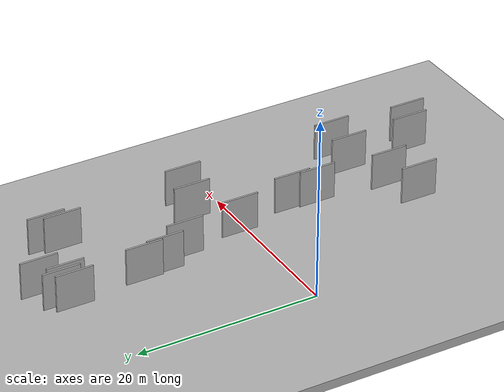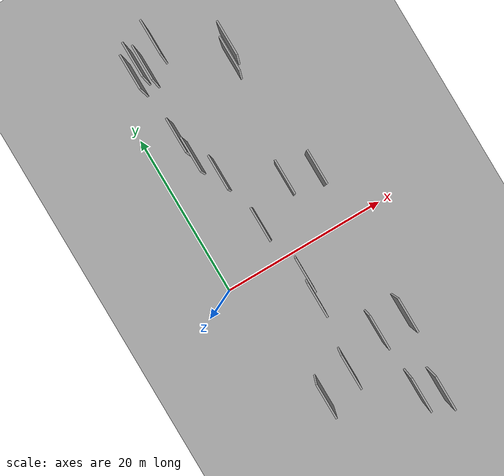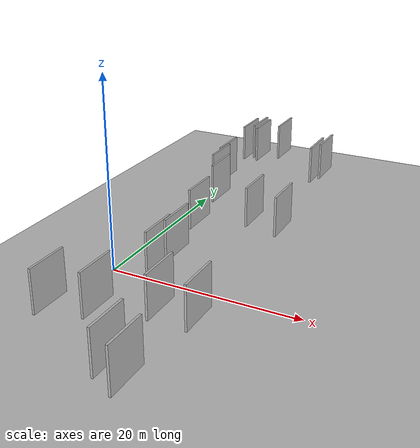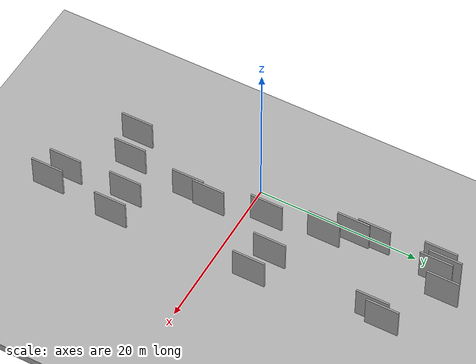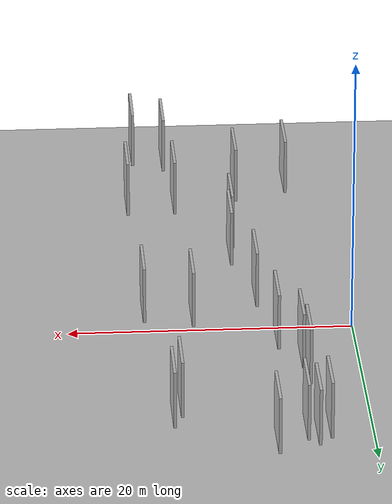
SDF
<?xml version="1.0" encoding="utf-8"?>

<sdf version="1.6">

   <world name="default">

      <gui fullscreen="0">

         <camera name="user_camera">

            <pose>-15 0 4.57585 0 0 0</pose>

            <view_controller>orbit</view_controller>

         </camera>

      </gui>

      <scene>

         <sky>

           <clouds>

             <speed>12</speed>

           </clouds>

         </sky>

         <ambient>0.4 0.4 0.4 1</ambient>

         <background>0.7 0.7 0.7 1</background>

         <shadows>1</shadows>

      </scene>

      <gravity>0 0 -9.8066</gravity>

      <magnetic_field>6e-06 2.3e-05 -4.2e-05</magnetic_field>

      <physics default="0" name="default_physics" type="ode">

         <ode>

            <solver>

               <type>quick</type>

               <iters>10</iters>

               <sor>1.0</sor>

               <use_dynamic_moi_rescaling>0</use_dynamic_moi_rescaling>

            </solver>

            <constraints>

               <cfm>0</cfm>

               <erp>0.2</erp>

               <contact_max_correcting_vel>100</contact_max_correcting_vel>

               <contact_surface_layer>0.001</contact_surface_layer>

            </constraints>

         </ode>

         <max_step_size>0.004</max_step_size>

         <real_time_factor>1</real_time_factor>

         <real_time_update_rate>250</real_time_update_rate>

      </physics>

      <light name="sun" type="directional">

         <cast_shadows>1</cast_shadows>

         <pose>0 0 10 0 0 0</pose>

         <diffuse>0.8 0.8 0.8 1</diffuse>

         <specular>0.2 0.2 0.2 1</specular>

         <attenuation>

            <range>1000</range>

            <constant>0.9</constant>

            <linear>0.01</linear>

            <quadratic>0.001</quadratic>

         </attenuation>

         <direction>-0.5 0.1 -0.9</direction>

      </light>

      <include>

         <name>ground_plane_1</name>

         <uri>model://HANNAS_ground_plane</uri>

         <pose>0 0 0  0 0 0</pose>

      </include>

      <include>

         <name>ground_plane_2</name>

         <uri>model://HANNAS_ground_plane</uri>

         <pose>100 0 0  0 0 0</pose>

      </include>

      <model name="HANNAS_wall_1">

         <static>1</static>

         <pose frame="">13.9097 22.5149 5.0 0.000000 0.000000 1.570796</pose>

         <link name="link">

            <pose frame="">0 0 2.00 0 0 0</pose>

            <collision name="collision">

               <geometry>

                  <box>

                     <size>4.00 0.2 4.00</size>

                  </box>

               </geometry>

               <max_contacts>10</max_contacts>

               <surface>

                  <contact>

                     <ode/>

                  </contact>

                  <bounce/>

                  <friction>

                     <torsional>

                        <ode/>

                     </torsional>

                     <ode/>

                  </friction>

               </surface>

            </collision>

            <visual name="visual">

               <cast_shadows>0</cast_shadows>

               <geometry>

                  <box>

                     <size>4.00 0.2 4.00</size>

                  </box>

               </geometry>

               <material>

                  <script>

                     <uri>model://HANNAS_wall/materials/scripts</uri>

                     <uri>model://HANNAS_wall/materials/textures</uri>

                     <name>vrc/HANNAS_wall</name>

                  </script>

               </material>

            </visual>

            <self_collide>0</self_collide>

            <enable_wind>0</enable_wind>

            <kinematic>0</kinematic>

         </link>

      </model>

      <model name="HANNAS_wall_2">

         <static>1</static>

         <pose frame="">12.3704 -18.4030 5.0 0.000000 0.000000 1.570796</pose>

         <link name="link">

            <pose frame="">0 0 2.00 0 0 0</pose>

            <collision name="collision">

               <geometry>

                  <box>

                     <size>4.00 0.2 4.00</size>

                  </box>

               </geometry>

               <max_contacts>10</max_contacts>

               <surface>

                  <contact>

                     <ode/>

                  </contact>

                  <bounce/>

                  <friction>

                     <torsional>

                        <ode/>

                     </torsional>

                     <ode/>

                  </friction>

               </surface>

            </collision>

            <visual name="visual">

               <cast_shadows>0</cast_shadows>

               <geometry>

                  <box>

                     <size>4.00 0.2 4.00</size>

                  </box>

               </geometry>

               <material>

                  <script>

                     <uri>model://HANNAS_wall/materials/scripts</uri>

                     <uri>model://HANNAS_wall/materials/textures</uri>

                     <name>vrc/HANNAS_wall</name>

                  </script>

               </material>

            </visual>

            <self_collide>0</self_collide>

            <enable_wind>0</enable_wind>

            <kinematic>0</kinematic>

         </link>

      </model>

      <model name="HANNAS_wall_3">

         <static>1</static>

         <pose frame="">7.4770 -12.8125 5.0 0.000000 0.000000 1.570796</pose>

         <link name="link">

            <pose frame="">0 0 2.00 0 0 0</pose>

            <collision name="collision">

               <geometry>

                  <box>

                     <size>4.00 0.2 4.00</size>

                  </box>

               </geometry>

               <max_contacts>10</max_contacts>

               <surface>

                  <contact>

                     <ode/>

                  </contact>

                  <bounce/>

                  <friction>

                     <torsional>

                        <ode/>

                     </torsional>

                     <ode/>

                  </friction>

               </surface>

            </collision>

            <visual name="visual">

               <cast_shadows>0</cast_shadows>

               <geometry>

                  <box>

                     <size>4.00 0.2 4.00</size>

                  </box>

               </geometry>

               <material>

                  <script>

                     <uri>model://HANNAS_wall/materials/scripts</uri>

                     <uri>model://HANNAS_wall/materials/textures</uri>

                     <name>vrc/HANNAS_wall</name>

                  </script>

               </material>

            </visual>

            <self_collide>0</self_collide>

            <enable_wind>0</enable_wind>

            <kinematic>0</kinematic>

         </link>

      </model>

      <model name="HANNAS_wall_4">

         <static>1</static>

         <pose frame="">6.2312 11.3395 5.0 0.000000 0.000000 1.570796</pose>

         <link name="link">

            <pose frame="">0 0 2.00 0 0 0</pose>

            <collision name="collision">

               <geometry>

                  <box>

                     <size>4.00 0.2 4.00</size>

                  </box>

               </geometry>

               <max_contacts>10</max_contacts>

               <surface>

                  <contact>

                     <ode/>

                  </contact>

                  <bounce/>

                  <friction>

                     <torsional>

                        <ode/>

                     </torsional>

                     <ode/>

                  </friction>

               </surface>

            </collision>

            <visual name="visual">

               <cast_shadows>0</cast_shadows>

               <geometry>

                  <box>

                     <size>4.00 0.2 4.00</size>

                  </box>

               </geometry>

               <material>

                  <script>

                     <uri>model://HANNAS_wall/materials/scripts</uri>

                     <uri>model://HANNAS_wall/materials/textures</uri>

                     <name>vrc/HANNAS_wall</name>

                  </script>

               </material>

            </visual>

            <self_collide>0</self_collide>

            <enable_wind>0</enable_wind>

            <kinematic>0</kinematic>

         </link>

      </model>

      <model name="HANNAS_wall_5">

         <static>1</static>

         <pose frame="">7.3326 26.5367 5.0 0.000000 0.000000 1.570796</pose>

         <link name="link">

            <pose frame="">0 0 2.00 0 0 0</pose>

            <collision name="collision">

               <geometry>

                  <box>

                     <size>4.00 0.2 4.00</size>

                  </box>

               </geometry>

               <max_contacts>10</max_contacts>

               <surface>

                  <contact>

                     <ode/>

                  </contact>

                  <bounce/>

                  <friction>

                     <torsional>

                        <ode/>

                     </torsional>

                     <ode/>

                  </friction>

               </surface>

            </collision>

            <visual name="visual">

               <cast_shadows>0</cast_shadows>

               <geometry>

                  <box>

                     <size>4.00 0.2 4.00</size>

                  </box>

               </geometry>

               <material>

                  <script>

                     <uri>model://HANNAS_wall/materials/scripts</uri>

                     <uri>model://HANNAS_wall/materials/textures</uri>

                     <name>vrc/HANNAS_wall</name>

                  </script>

               </material>

            </visual>

            <self_collide>0</self_collide>

            <enable_wind>0</enable_wind>

            <kinematic>0</kinematic>

         </link>

      </model>

      <model name="HANNAS_wall_6">

         <static>1</static>

         <pose frame="">15.0741 6.7073 5.0 0.000000 0.000000 1.570796</pose>

         <link name="link">

            <pose frame="">0 0 2.00 0 0 0</pose>

            <collision name="collision">

               <geometry>

                  <box>

                     <size>4.00 0.2 4.00</size>

                  </box>

               </geometry>

               <max_contacts>10</max_contacts>

               <surface>

                  <contact>

                     <ode/>

                  </contact>

                  <bounce/>

                  <friction>

                     <torsional>

                        <ode/>

                     </torsional>

                     <ode/>

                  </friction>

               </surface>

            </collision>

            <visual name="visual">

               <cast_shadows>0</cast_shadows>

               <geometry>

                  <box>

                     <size>4.00 0.2 4.00</size>

                  </box>

               </geometry>

               <material>

                  <script>

                     <uri>model://HANNAS_wall/materials/scripts</uri>

                     <uri>model://HANNAS_wall/materials/textures</uri>

                     <name>vrc/HANNAS_wall</name>

                  </script>

               </material>

            </visual>

            <self_collide>0</self_collide>

            <enable_wind>0</enable_wind>

            <kinematic>0</kinematic>

         </link>

      </model>

      <model name="HANNAS_wall_7">

         <static>1</static>

         <pose frame="">15.3123 -10.8016 5.0 0.000000 0.000000 1.570796</pose>

         <link name="link">

            <pose frame="">0 0 2.00 0 0 0</pose>

            <collision name="collision">

               <geometry>

                  <box>

                     <size>4.00 0.2 4.00</size>

                  </box>

               </geometry>

               <max_contacts>10</max_contacts>

               <surface>

                  <contact>

                     <ode/>

                  </contact>

                  <bounce/>

                  <friction>

                     <torsional>

                        <ode/>

                     </torsional>

                     <ode/>

                  </friction>

               </surface>

            </collision>

            <visual name="visual">

               <cast_shadows>0</cast_shadows>

               <geometry>

                  <box>

                     <size>4.00 0.2 4.00</size>

                  </box>

               </geometry>

               <material>

                  <script>

                     <uri>model://HANNAS_wall/materials/scripts</uri>

                     <uri>model://HANNAS_wall/materials/textures</uri>

                     <name>vrc/HANNAS_wall</name>

                  </script>

               </material>

            </visual>

            <self_collide>0</self_collide>

            <enable_wind>0</enable_wind>

            <kinematic>0</kinematic>

         </link>

      </model>

      <model name="HANNAS_wall_8">

         <static>1</static>

         <pose frame="">11.7667 7.5031 5.0 0.000000 0.000000 1.570796</pose>

         <link name="link">

            <pose frame="">0 0 2.00 0 0 0</pose>

            <collision name="collision">

               <geometry>

                  <box>

                     <size>4.00 0.2 4.00</size>

                  </box>

               </geometry>

               <max_contacts>10</max_contacts>

               <surface>

                  <contact>

                     <ode/>

                  </contact>

                  <bounce/>

                  <friction>

                     <torsional>

                        <ode/>

                     </torsional>

                     <ode/>

                  </friction>

               </surface>

            </collision>

            <visual name="visual">

               <cast_shadows>0</cast_shadows>

               <geometry>

                  <box>

                     <size>4.00 0.2 4.00</size>

                  </box>

               </geometry>

               <material>

                  <script>

                     <uri>model://HANNAS_wall/materials/scripts</uri>

                     <uri>model://HANNAS_wall/materials/textures</uri>

                     <name>vrc/HANNAS_wall</name>

                  </script>

               </material>

            </visual>

            <self_collide>0</self_collide>

            <enable_wind>0</enable_wind>

            <kinematic>0</kinematic>

         </link>

      </model>

      <model name="HANNAS_wall_9">

         <static>1</static>

         <pose frame="">7.2168 4.6454 5.0 0.000000 0.000000 1.570796</pose>

         <link name="link">

            <pose frame="">0 0 2.00 0 0 0</pose>

            <collision name="collision">

               <geometry>

                  <box>

                     <size>4.00 0.2 4.00</size>

                  </box>

               </geometry>

               <max_contacts>10</max_contacts>

               <surface>

                  <contact>

                     <ode/>

                  </contact>

                  <bounce/>

                  <friction>

                     <torsional>

                        <ode/>

                     </torsional>

                     <ode/>

                  </friction>

               </surface>

            </collision>

            <visual name="visual">

               <cast_shadows>0</cast_shadows>

               <geometry>

                  <box>

                     <size>4.00 0.2 4.00</size>

                  </box>

               </geometry>

               <material>

                  <script>

                     <uri>model://HANNAS_wall/materials/scripts</uri>

                     <uri>model://HANNAS_wall/materials/textures</uri>

                     <name>vrc/HANNAS_wall</name>

                  </script>

               </material>

            </visual>

            <self_collide>0</self_collide>

            <enable_wind>0</enable_wind>

            <kinematic>0</kinematic>

         </link>

      </model>

      <model name="HANNAS_wall_10">

         <static>1</static>

         <pose frame="">4.5075 16.7109 5.0 0.000000 0.000000 1.570796</pose>

         <link name="link">

            <pose frame="">0 0 2.00 0 0 0</pose>

            <collision name="collision">

               <geometry>

                  <box>

                     <size>4.00 0.2 4.00</size>

                  </box>

               </geometry>

               <max_contacts>10</max_contacts>

               <surface>

                  <contact>

                     <ode/>

                  </contact>

                  <bounce/>

                  <friction>

                     <torsional>

                        <ode/>

                     </torsional>

                     <ode/>

                  </friction>

               </surface>

            </collision>

            <visual name="visual">

               <cast_shadows>0</cast_shadows>

               <geometry>

                  <box>

                     <size>4.00 0.2 4.00</size>

                  </box>

               </geometry>

               <material>

                  <script>

                     <uri>model://HANNAS_wall/materials/scripts</uri>

                     <uri>model://HANNAS_wall/materials/textures</uri>

                     <name>vrc/HANNAS_wall</name>

                  </script>

               </material>

            </visual>

            <self_collide>0</self_collide>

            <enable_wind>0</enable_wind>

            <kinematic>0</kinematic>

         </link>

      </model>

      <model name="HANNAS_wall_11">

         <static>1</static>

         <pose frame="">3.7710 24.5595 5.0 0.000000 0.000000 1.570796</pose>

         <link name="link">

            <pose frame="">0 0 2.00 0 0 0</pose>

            <collision name="collision">

               <geometry>

                  <box>

                     <size>4.00 0.2 4.00</size>

                  </box>

               </geometry>

               <max_contacts>10</max_contacts>

               <surface>

                  <contact>

                     <ode/>

                  </contact>

                  <bounce/>

                  <friction>

                     <torsional>

                        <ode/>

                     </torsional>

                     <ode/>

                  </friction>

               </surface>

            </collision>

            <visual name="visual">

               <cast_shadows>0</cast_shadows>

               <geometry>

                  <box>

                     <size>4.00 0.2 4.00</size>

                  </box>

               </geometry>

               <material>

                  <script>

                     <uri>model://HANNAS_wall/materials/scripts</uri>

                     <uri>model://HANNAS_wall/materials/textures</uri>

                     <name>vrc/HANNAS_wall</name>

                  </script>

               </material>

            </visual>

            <self_collide>0</self_collide>

            <enable_wind>0</enable_wind>

            <kinematic>0</kinematic>

         </link>

      </model>

      <model name="HANNAS_wall_12">

         <static>1</static>

         <pose frame="">3.8115 -14.0479 5.0 0.000000 0.000000 1.570796</pose>

         <link name="link">

            <pose frame="">0 0 2.00 0 0 0</pose>

            <collision name="collision">

               <geometry>

                  <box>

                     <size>4.00 0.2 4.00</size>

                  </box>

               </geometry>

               <max_contacts>10</max_contacts>

               <surface>

                  <contact>

                     <ode/>

                  </contact>

                  <bounce/>

                  <friction>

                     <torsional>

                        <ode/>

                     </torsional>

                     <ode/>

                  </friction>

               </surface>

            </collision>

            <visual name="visual">

               <cast_shadows>0</cast_shadows>

               <geometry>

                  <box>

                     <size>4.00 0.2 4.00</size>

                  </box>

               </geometry>

               <material>

                  <script>

                     <uri>model://HANNAS_wall/materials/scripts</uri>

                     <uri>model://HANNAS_wall/materials/textures</uri>

                     <name>vrc/HANNAS_wall</name>

                  </script>

               </material>

            </visual>

            <self_collide>0</self_collide>

            <enable_wind>0</enable_wind>

            <kinematic>0</kinematic>

         </link>

      </model>

      <model name="HANNAS_wall_13">

         <static>1</static>

         <pose frame="">8.2517 -4.8424 5.0 0.000000 0.000000 1.570796</pose>

         <link name="link">

            <pose frame="">0 0 2.00 0 0 0</pose>

            <collision name="collision">

               <geometry>

                  <box>

                     <size>4.00 0.2 4.00</size>

                  </box>

               </geometry>

               <max_contacts>10</max_contacts>

               <surface>

                  <contact>

                     <ode/>

                  </contact>

                  <bounce/>

                  <friction>

                     <torsional>

                        <ode/>

                     </torsional>

                     <ode/>

                  </friction>

               </surface>

            </collision>

            <visual name="visual">

               <cast_shadows>0</cast_shadows>

               <geometry>

                  <box>

                     <size>4.00 0.2 4.00</size>

                  </box>

               </geometry>

               <material>

                  <script>

                     <uri>model://HANNAS_wall/materials/scripts</uri>

                     <uri>model://HANNAS_wall/materials/textures</uri>

                     <name>vrc/HANNAS_wall</name>

                  </script>

               </material>

            </visual>

            <self_collide>0</self_collide>

            <enable_wind>0</enable_wind>

            <kinematic>0</kinematic>

         </link>

      </model>

      <model name="HANNAS_wall_14">

         <static>1</static>

         <pose frame="">5.3126 24.7505 5.0 0.000000 0.000000 1.570796</pose>

         <link name="link">

            <pose frame="">0 0 2.00 0 0 0</pose>

            <collision name="collision">

               <geometry>

                  <box>

                     <size>4.00 0.2 4.00</size>

                  </box>

               </geometry>

               <max_contacts>10</max_contacts>

               <surface>

                  <contact>

                     <ode/>

                  </contact>

                  <bounce/>

                  <friction>

                     <torsional>

                        <ode/>

                     </torsional>

                     <ode/>

                  </friction>

               </surface>

            </collision>

            <visual name="visual">

               <cast_shadows>0</cast_shadows>

               <geometry>

                  <box>

                     <size>4.00 0.2 4.00</size>

                  </box>

               </geometry>

               <material>

                  <script>

                     <uri>model://HANNAS_wall/materials/scripts</uri>

                     <uri>model://HANNAS_wall/materials/textures</uri>

                     <name>vrc/HANNAS_wall</name>

                  </script>

               </material>

            </visual>

            <self_collide>0</self_collide>

            <enable_wind>0</enable_wind>

            <kinematic>0</kinematic>

         </link>

      </model>

      <model name="HANNAS_wall_15">

         <static>1</static>

         <pose frame="">4.7926 14.3018 5.0 0.000000 0.000000 1.570796</pose>

         <link name="link">

            <pose frame="">0 0 2.00 0 0 0</pose>

            <collision name="collision">

               <geometry>

                  <box>

                     <size>4.00 0.2 4.00</size>

                  </box>

               </geometry>

               <max_contacts>10</max_contacts>

               <surface>

                  <contact>

                     <ode/>

                  </contact>

                  <bounce/>

                  <friction>

                     <torsional>

                        <ode/>

                     </torsional>

                     <ode/>

                  </friction>

               </surface>

            </collision>

            <visual name="visual">

               <cast_shadows>0</cast_shadows>

               <geometry>

                  <box>

                     <size>4.00 0.2 4.00</size>

                  </box>

               </geometry>

               <material>

                  <script>

                     <uri>model://HANNAS_wall/materials/scripts</uri>

                     <uri>model://HANNAS_wall/materials/textures</uri>

                     <name>vrc/HANNAS_wall</name>

                  </script>

               </material>

            </visual>

            <self_collide>0</self_collide>

            <enable_wind>0</enable_wind>

            <kinematic>0</kinematic>

         </link>

      </model>

      <model name="HANNAS_wall_16">

         <static>1</static>

         <pose frame="">11.9622 -10.8295 5.0 0.000000 0.000000 1.570796</pose>

         <link name="link">

            <pose frame="">0 0 2.00 0 0 0</pose>

            <collision name="collision">

               <geometry>

                  <box>

                     <size>4.00 0.2 4.00</size>

                  </box>

               </geometry>

               <max_contacts>10</max_contacts>

               <surface>

                  <contact>

                     <ode/>

                  </contact>

                  <bounce/>

                  <friction>

                     <torsional>

                        <ode/>

                     </torsional>

                     <ode/>

                  </friction>

               </surface>

            </collision>

            <visual name="visual">

               <cast_shadows>0</cast_shadows>

               <geometry>

                  <box>

                     <size>4.00 0.2 4.00</size>

                  </box>

               </geometry>

               <material>

                  <script>

                     <uri>model://HANNAS_wall/materials/scripts</uri>

                     <uri>model://HANNAS_wall/materials/textures</uri>

                     <name>vrc/HANNAS_wall</name>

                  </script>

               </material>

            </visual>

            <self_collide>0</self_collide>

            <enable_wind>0</enable_wind>

            <kinematic>0</kinematic>

         </link>

      </model>

      <model name="HANNAS_wall_17">

         <static>1</static>

         <pose frame="">4.6201 25.5107 5.0 0.000000 0.000000 1.570796</pose>

         <link name="link">

            <pose frame="">0 0 2.00 0 0 0</pose>

            <collision name="collision">

               <geometry>

                  <box>

                     <size>4.00 0.2 4.00</size>

                  </box>

               </geometry>

               <max_contacts>10</max_contacts>

               <surface>

                  <contact>

                     <ode/>

                  </contact>

                  <bounce/>

                  <friction>

                     <torsional>

                        <ode/>

                     </torsional>

                     <ode/>

                  </friction>

               </surface>

            </collision>

            <visual name="visual">

               <cast_shadows>0</cast_shadows>

               <geometry>

                  <box>

                     <size>4.00 0.2 4.00</size>

                  </box>

               </geometry>

               <material>

                  <script>

                     <uri>model://HANNAS_wall/materials/scripts</uri>

                     <uri>model://HANNAS_wall/materials/textures</uri>

                     <name>vrc/HANNAS_wall</name>

                  </script>

               </material>

            </visual>

            <self_collide>0</self_collide>

            <enable_wind>0</enable_wind>

            <kinematic>0</kinematic>

         </link>

      </model>

      <model name="HANNAS_wall_18">

         <static>1</static>

         <pose frame="">14.5381 -19.4769 5.0 0.000000 0.000000 1.570796</pose>

         <link name="link">

            <pose frame="">0 0 2.00 0 0 0</pose>

            <collision name="collision">

               <geometry>

                  <box>

                     <size>4.00 0.2 4.00</size>

                  </box>

               </geometry>

               <max_contacts>10</max_contacts>

               <surface>

                  <contact>

                     <ode/>

                  </contact>

                  <bounce/>

                  <friction>

                     <torsional>

                        <ode/>

                     </torsional>

                     <ode/>

                  </friction>

               </surface>

            </collision>

            <visual name="visual">

               <cast_shadows>0</cast_shadows>

               <geometry>

                  <box>

                     <size>4.00 0.2 4.00</size>

                  </box>

               </geometry>

               <material>

                  <script>

                     <uri>model://HANNAS_wall/materials/scripts</uri>

                     <uri>model://HANNAS_wall/materials/textures</uri>

                     <name>vrc/HANNAS_wall</name>

                  </script>

               </material>

            </visual>

            <self_collide>0</self_collide>

            <enable_wind>0</enable_wind>

            <kinematic>0</kinematic>

         </link>

      </model>

      <model name="HANNAS_wall_19">

         <static>1</static>

         <pose frame="">8.5005 -2.0853 5.0 0.000000 0.000000 1.570796</pose>

         <link name="link">

            <pose frame="">0 0 2.00 0 0 0</pose>

            <collision name="collision">

               <geometry>

                  <box>

                     <size>4.00 0.2 4.00</size>

                  </box>

               </geometry>

               <max_contacts>10</max_contacts>

               <surface>

                  <contact>

                     <ode/>

                  </contact>

                  <bounce/>

                  <friction>

                     <torsional>

                        <ode/>

                     </torsional>

                     <ode/>

                  </friction>

               </surface>

            </collision>

            <visual name="visual">

               <cast_shadows>0</cast_shadows>

               <geometry>

                  <box>

                     <size>4.00 0.2 4.00</size>

                  </box>

               </geometry>

               <material>

                  <script>

                     <uri>model://HANNAS_wall/materials/scripts</uri>

                     <uri>model://HANNAS_wall/materials/textures</uri>

                     <name>vrc/HANNAS_wall</name>

                  </script>

               </material>

            </visual>

            <self_collide>0</self_collide>

            <enable_wind>0</enable_wind>

            <kinematic>0</kinematic>

         </link>

      </model>

      <model name="HANNAS_wall_20">

         <static>1</static>

         <pose frame="">13.3295 21.0366 5.0 0.000000 0.000000 1.570796</pose>

         <link name="link">

            <pose frame="">0 0 2.00 0 0 0</pose>

            <collision name="collision">

               <geometry>

                  <box>

                     <size>4.00 0.2 4.00</size>

                  </box>

               </geometry>

               <max_contacts>10</max_contacts>

               <surface>

                  <contact>

                     <ode/>

                  </contact>

                  <bounce/>

                  <friction>

                     <torsional>

                        <ode/>

                     </torsional>

                     <ode/>

                  </friction>

               </surface>

            </collision>

            <visual name="visual">

               <cast_shadows>0</cast_shadows>

               <geometry>

                  <box>

                     <size>4.00 0.2 4.00</size>

                  </box>

               </geometry>

               <material>

                  <script>

                     <uri>model://HANNAS_wall/materials/scripts</uri>

                     <uri>model://HANNAS_wall/materials/textures</uri>

                     <name>vrc/HANNAS_wall</name>

                  </script>

               </material>

            </visual>

            <self_collide>0</self_collide>

            <enable_wind>0</enable_wind>

            <kinematic>0</kinematic>

         </link>

      </model>

   </world>

</sdf>

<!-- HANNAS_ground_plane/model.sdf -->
<sdf version="1.4">
<model name="HANNAS_ground_plane">
  <static>true</static>
    <link name="link">
      <collision name="collision">
        <geometry>
          <plane>
            <normal>0 0 1</normal>
            <size>1000 1000</size>
          </plane>
        </geometry>
        <surface>
          <friction>
            <ode>
              <mu>100</mu>
              <mu2>50</mu2>
            </ode>
          </friction>
        </surface>
      </collision>
      <visual name="visual">
        <cast_shadows>false</cast_shadows>
        <geometry>
          <plane>
            <normal>0 0 1</normal>
            <size>1000 1000</size>
          </plane>
        </geometry>
        <material>
          <script>
            <uri>model://HANNAS_ground_plane/materials/scripts/HANNAS_ground_plane.material</uri>
	    <uri>model://HANNAS_ground_plane/materials/textures</uri>
            <name>HANNASGroundPlane/Image</name>
          </script>
        </material>
      </visual>
    </link>
  </model>
</sdf>
